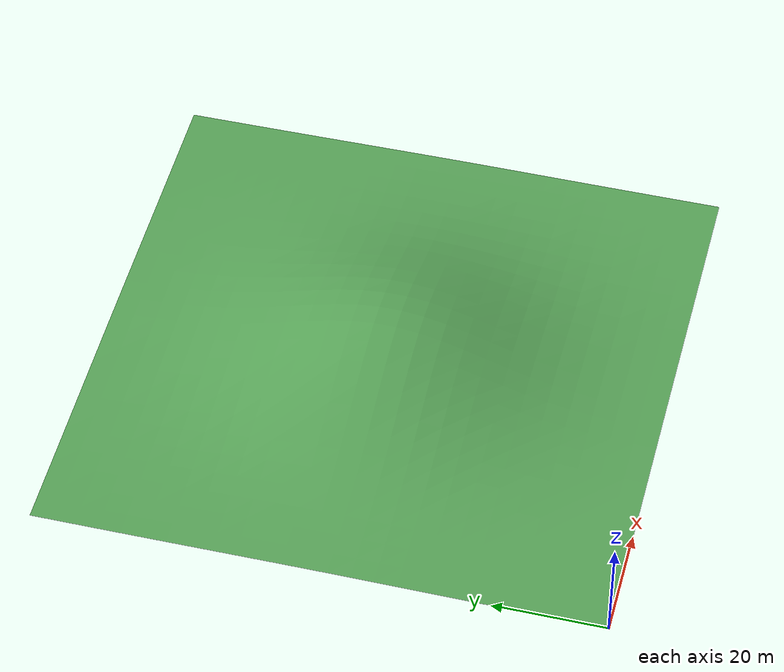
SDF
<?xml version="1.0"?>
<sdf version="1.10">
  <model name="dem_terrain">
    <static>true</static>
    <link name="terrain_link">
      <visual name="terrain_visual">
        <geometry>
          <mesh>
            <uri>model://dem_terrain/meshes/example_dem_100m.dae</uri>
            <scale>1 1 1</scale>
          </mesh>
        </geometry>
        <material>
          <ambient>0.35 0.65 0.35 1</ambient>
          <diffuse>0.35 0.65 0.35 1</diffuse>
        </material>
      </visual>
      <collision name="terrain_collision">
        <geometry>
          <mesh>
            <uri>model://dem_terrain/meshes/example_dem_100m.dae</uri>
            <scale>1 1 1</scale>
          </mesh>
        </geometry>
      </collision>
    </link>
  </model>
</sdf>
